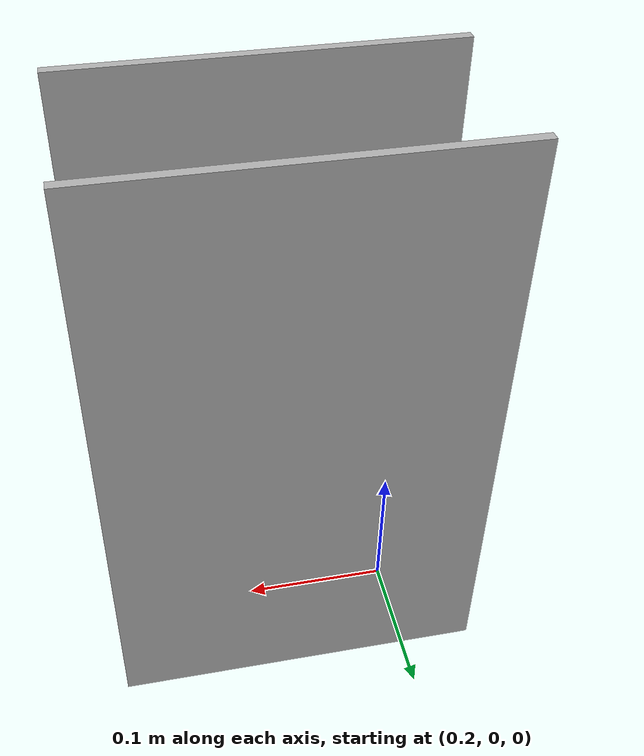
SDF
<?xml version="1.0" ?>
<sdf version="1.4">
  <world name="default">
    <include>
      <uri>model://sun</uri>
    </include>

    <model name="obs1">
      <pose>0.275 0.06335 0.2 0 -0 0</pose>
      <static>1</static>
      <link name="link">
        <visual name="visual">
          <geometry>
            <box>
              <size>0.25 0.0067 0.4</size>
            </box>
          </geometry>
        </visual>
        <collision name='collision'>
          <laser_retro>0</laser_retro>
          <geometry>
            <box>
              <size>0.25 0.0067 0.4</size>
            </box>
          </geometry>
        </collision>
      </link>
    </model>

    <model name="obs2">
      <pose>0.275 -0.06335 0.2 0 -0 0</pose>
      <static>1</static>
      <link name="link">
        <visual name="visual">
          <geometry>
            <box>
              <size>0.25 0.0067 0.4</size>
            </box>
          </geometry>
        </visual>
        <collision name='collision'>
          <laser_retro>0</laser_retro>
          <geometry>
            <box>
              <size>0.25 0.0067 0.4</size>
            </box>
          </geometry>
        </collision>
      </link>
    </model>
  </world>
</sdf>
